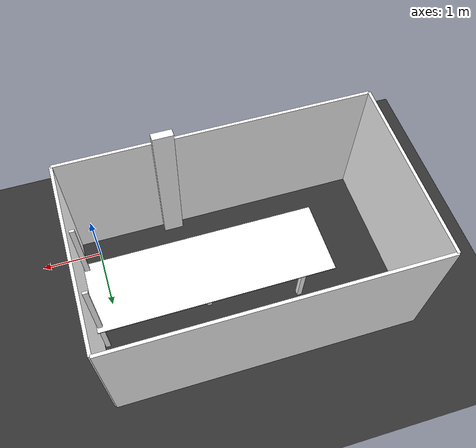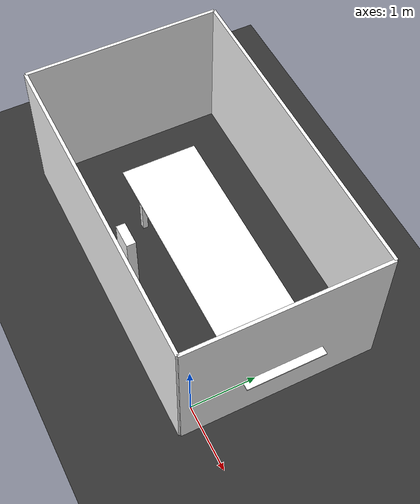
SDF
<?xml version="1.0" ?>
<sdf version="1.7">
  <world name="small_room">
    <physics name="1ms" type="ode">
      <max_step_size>0.001</max_step_size>
      <real_time_factor>1.0</real_time_factor>
    </physics>
    <plugin filename="ignition-gazebo-physics-system" name="ignition::gazebo::systems::Physics"></plugin>
    <plugin filename="ignition-gazebo-user-commands-system" name="ignition::gazebo::systems::UserCommands"></plugin>
    <plugin filename="ignition-gazebo-scene-broadcaster-system" name="ignition::gazebo::systems::SceneBroadcaster"></plugin>
    <plugin filename="ignition-gazebo-contact-system" name="ignition::gazebo::systems::Contact"></plugin>

    <scene>
      <grid>false</grid>
      <background>1 0 0 1</background>
    </scene>

    <light type="directional" name="sun">
      <cast_shadows>true</cast_shadows>
      <pose>0 0 10 0 0 0</pose>
      <diffuse>0.8 0.8 0.8 1</diffuse>
      <specular>0.2 0.2 0.2 1</specular>
      <attenuation>
        <range>1000</range>
        <constant>0.9</constant>
        <linear>0.01</linear>
        <quadratic>0.001</quadratic>
      </attenuation>
      <direction>-0.5 0.1 -0.9</direction>
    </light>

    <model name="ground plane">
      <static>true</static>
      <link name="link">
        <collision name="collision">
          <geometry>
            <plane>
              <normal>0 0 1</normal>
              <size>100 100</size>
            </plane>
          </geometry>
        </collision>
        <visual name="visual">
          <geometry>
            <plane>
              <normal>0 0 1</normal>
              <size>100 100</size>
            </plane>
          </geometry>
          <material>
            <ambient>0.2 0.2 0.2 1</ambient>
            <diffuse>0.2 0.2 0.2 1</diffuse>
            <specular>0.2 0 1 1</specular>
          </material>
        </visual>
      </link>
    </model>

    <!-- Room -->
    <model name="wall1">
      <pose>-2.2 -0.3 1 0 0 0</pose>
      <static>true</static>
      <link name="link">
        <collision name="collision">
          <geometry>
            <box>
              <size>5 0.05 2.5</size>
            </box>
          </geometry>
        </collision>
        <visual name="visual">
          <geometry>
            <box>
              <size>5 0.05 2.5</size>
            </box>
          </geometry>
          <material>
            <ambient>1 1 1 1</ambient>
            <diffuse>1 1 1 1</diffuse>
            <specular>0.2 0.2 0.4 0.4</specular>
          </material>
        </visual>
      </link>
    </model>

    <model name="wall2">
      <pose>-2.2 2.7 1 0 0 0</pose>
      <static>true</static>
      <link name="link">
        <collision name="collision">
          <geometry>
            <box>
              <size>5 0.05 2.5</size>
            </box>
          </geometry>
        </collision>
        <visual name="visual">
          <geometry>
            <box>
              <size>5 0.05 2.5</size>
            </box>
          </geometry>
          <material>
            <ambient>1 1 1 1</ambient>
            <diffuse>1 1 1 1</diffuse>
            <specular>0.2 0.2 0.4 0.4</specular>
          </material>
        </visual>
      </link>
    </model>

    <model name="wall3">
      <pose>0.3 1.2 1 0 0 1.57</pose>
      <static>true</static>
      <link name="link">
        <collision name="collision">
          <geometry>
            <box>
              <size>3 0.05 2.5</size>
            </box>
          </geometry>
        </collision>
        <visual name="visual">
          <geometry>
            <box>
              <size>3 0.05 2.5</size>
            </box>
          </geometry>
          <material>
            <ambient>1 1 1 1</ambient>
            <diffuse>1 1 1 1</diffuse>
            <specular>0.2 0.2 0.4 0.4</specular>
          </material>
        </visual>
      </link>
    </model>

    <model name="wall4">
      <pose>-4.7 1.2 1 0 0 1.57</pose>
      <static>true</static>
      <link name="link">
        <collision name="collision">
          <geometry>
            <box>
              <size>3 0.05 2.5</size>
            </box>
          </geometry>
        </collision>
        <visual name="visual">
          <geometry>
            <box>
              <size>3 0.05 2.5</size>
            </box>
          </geometry>
          <material>
            <ambient>1 1 1 1</ambient>
            <diffuse>1 1 1 1</diffuse>
            <specular>0.2 0.2 0.4 0.4</specular>
          </material>
        </visual>
      </link>
    </model>

    <!-- Table -->
    <model name="table">
      <pose>-3.05 0.7 0 0 0 0</pose>
      <static>true</static>
      <link name="link">
        <collision name="tabletop">
          <pose>1.5 0.3 0.8 0 0 0</pose>
          <geometry>
            <box><size>4 1.2 0.02</size></box>
          </geometry>
        </collision>
        <visual name="tabletop">
          <pose>1.5 0.5 0.8 0 0 0</pose>
          <geometry>
            <box><size>4 1.2 0.02</size></box>
          </geometry>
          <material>
            <ambient>1 1 1 1</ambient>
            <diffuse>1 1 1 1</diffuse>
            <specular>1 0 0 0</specular>
            <emmisive>1 1 1 1</emmisive>
          </material>
        </visual>

        <collision name="leg_1">
          <pose>0 0 0.4 0 0 0</pose>
          <geometry>
            <box><size>0.08 0.08 0.8</size></box>
          </geometry>
        </collision>
        <visual name="leg_1">
          <pose>0 0 0.4 0 0 0</pose>
          <geometry>
            <box><size>0.08 0.08 0.8</size></box>
          </geometry>
          <material>
            <ambient>1 1 1 1</ambient>
            <diffuse>1 1 1 1</diffuse>
            <specular>1 0 0 0</specular>
            <emmisive>1 1 1 1</emmisive>
          </material>
        </visual>

        <collision name="leg_2">
          <pose>1.5 0.3 0.4 0 0 0</pose>
          <geometry>
            <box><size>0.08 0.08 0.8</size></box>
          </geometry>
        </collision>
        <visual name="leg_2">
          <pose>1.5 0.3 0.4 0 0 0</pose>
          <geometry>
            <box><size>0.08 0.08 0.8</size></box>
          </geometry>
          <material>
            <ambient>1 1 1 1</ambient>
            <diffuse>1 1 1 1</diffuse>
            <specular>1 0 0 0</specular>
            <emmisive>1 1 1 1</emmisive>
          </material>
        </visual>

        <collision name="leg_3">
          <pose>0 1 0.4 0 0 0</pose>
          <geometry>
            <box><size>0.08 0.08 0.8</size></box>
          </geometry>
        </collision>
        <visual name="leg_3">
          <pose>0 1 0.4 0 0 0</pose>
          <geometry>
            <box><size>0.08 0.08 0.8</size></box>
          </geometry>
          <material>
            <ambient>1 1 1 1</ambient>
            <diffuse>1 1 1 1</diffuse>
            <specular>1 0 0 0</specular>
            <emmisive>1 1 1 1</emmisive>
          </material>
        </visual>

        <collision name="leg_4">
          <pose>1.5 0.75 0.4 0 0 0</pose>
          <geometry>
            <box><size>0.08 0.08 0.8</size></box>
          </geometry>
        </collision>
        <visual name="leg_4">
          <pose>1.5 0.75 0.4 0 0 0</pose>
          <geometry>
            <box><size>0.08 0.08 0.8</size></box>
          </geometry>
          <material>
            <ambient>1 1 1 1</ambient>
            <diffuse>1 1 1 1</diffuse>
            <specular>1 0 0 0</specular>
            <emmisive>1 1 1 1</emmisive>
          </material>
        </visual>
      </link>
    </model>

    <!-- Pillar -->
    <model name="pillar">
      <pose>-1.36 -0.2 1.25 0 0 0</pose>
      <static>true</static>
    	<link name="link">
    	  <collision name="collision">
          <geometry>
            <box><size>0.33 0.125 2.5</size></box>
          </geometry>
        </collision>
        <visual name="visual">
          <geometry>
            <box><size>0.33 0.125 2.5</size></box>
          </geometry>
          <material>
            <ambient>1 1 1 1</ambient>
            <diffuse>1 1 1 1</diffuse>
            <specular>1 0 0 0</specular>
            <emmisive>1 1 1 1</emmisive>
          </material>
        </visual>
    	</link>
    </model>

    <!-- Wall Implants -->
    <model name="wall implants">
      <pose>0.22 0.7 1 0 0 0</pose>
      <link name="link">
        <collision name="implant_1">
          <geometry>
            <box><size>0.08 0.04 2</size></box>
          </geometry>
        </collision>
        <visual name="implant_1">
          <geometry>
            <box><size>0.08 0.04 2</size></box>
          </geometry>
          <material>
            <ambient>1 1 1 1</ambient>
            <diffuse>1 1 1 1</diffuse>
            <specular>1 0 0 0</specular>
          </material>
        </visual>

        <collision name="implant_2">
          <pose>0 1 0 0 0 0</pose>
          <geometry>
            <box><size>0.08 0.04 2</size></box>
          </geometry>
        </collision>
        <visual name="implant_2">
          <pose>0 1 0 0 0 0</pose>
          <geometry>
            <box><size>0.08 0.04 2</size></box>
          </geometry>
          <material>
            <ambient>1 1 1 1</ambient>
            <diffuse>1 1 1 1</diffuse>
            <specular>1 0 0 0</specular>
          </material>
        </visual>
      </link>
    </model>

  </world>
</sdf>
